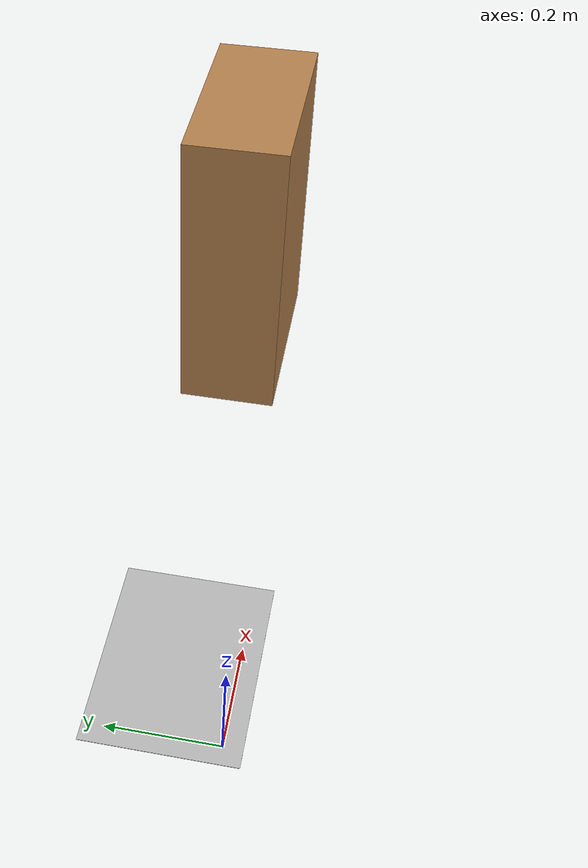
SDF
<sdf version='1.6'>
  <world name='default'>
    <scene>
      <ambient>0.4 0.4 0.4 1</ambient>
      <background>0.7 0.7 0.7 1</background>
      <shadows>0</shadows>
    </scene>

    <physics name='default_physics' default='0' type='ode'>
      <max_step_size>0.001</max_step_size>
      <real_time_factor>1</real_time_factor>
      <real_time_update_rate>1000</real_time_update_rate>
      <gravity>0 0 -9.8</gravity>
      <magnetic_field>6e-06 2.3e-05 -4.2e-05</magnetic_field>
    </physics>

    <light name='sun' type='directional'>
      <cast_shadows>0</cast_shadows>
      <pose frame=''>0 0 10 0 -0 0</pose>
      <diffuse>0.8 0.8 0.8 1</diffuse>
      <specular>0.1 0.1 0.1 1</specular>
      <attenuation>
        <range>1000</range>
        <constant>0.9</constant>
        <linear>0.01</linear>
        <quadratic>0.001</quadratic>
      </attenuation>
      <direction>-0.5 0.5 -1</direction>
    </light>

    <gui fullscreen='0'>
      <camera name='user_camera'>
        <pose frame=''>0 0 0.5 0 1.570796 1.570796</pose>
        <view_controller>orbit</view_controller>
        <projection_type>perspective</projection_type>
      </camera>
    </gui>

    <model name='camera'>
        <link name='camera_link'>
            <pose>0 0 1.0 0 1.570796 1.570796</pose>
            <visual name='visual'>
                <pose>0 0 0 0 0 0</pose>
                <geometry>
                    <box>
                        <size>0.3 0.2 0.1</size>
                    </box>
                </geometry>
                <material>
                    <script>
                        <name>Gazebo/Wood</name>
                        <uri>__default__</uri>
                    </script>
                </material>
            </visual>
            <gravity>0</gravity>
            <sensor name='camera_sensor' type='camera'>
                <camera>
                    <image>
                        <width>1280</width>
                        <height>800</height>
                        <format>R8G8B8</format>
                    </image>
                    <clip>
                        <near>0.19</near>
                        <far>3.2</far>
                    </clip>
                    <noise>
                        <type>gaussian</type>
                        <mean>0</mean>
                        <stddev>0</stddev>
                    </noise>

                    <lens>
                        <intrinsics>
                            <fx>1000</fx>
                            <fy>1000</fy>
                            <cx>640</cx>
                            <cy>400</cy>
                            <s>0.0</s>
                        </intrinsics>
                    </lens>
                </camera>
                <visualize>1</visualize>
                <plugin name='camera_controller' filename='libgazebo_ros_camera.so'>
                    <alwaysOn>true</alwaysOn>
                    <updateRate>30</updateRate>
                    <cameraName>camera_sensor</cameraName>
                    <imageTopicName>image_raw</imageTopicName>
                    <cameraInfoTopicName>camera_info</cameraInfoTopicName>
                    <frameName>camera_link</frameName>
                    <CxPrime>640</CxPrime>
                    <Cx>620</Cx>
                    <Cy>400</Cy>
                    <focalLengthX>1000</focalLengthX>
                    <focalLengthY>1000</focalLengthY>
                    <hackBaseline>0</hackBaseline>
                    <distortionK1>0</distortionK1>
                    <distortionK2>0</distortionK2>
                    <distortionT1>0</distortionT1>
                    <distortionT2>0</distortionT2>
                    <distortionK3>0</distortionK3>
                    <robotNamespace>/</robotNamespace>
                </plugin>
            </sensor>
        </link>
        <static>true</static>
    </model>

    <model name="calibration_pattern">
        <static>true</static>
        <link name="calibration_pattern_link">
            <pose>0.153675 0.10245 0 0 0 0</pose>
            <visual name="visual">
                <cast_shadows>false</cast_shadows>
                <geometry>
                    <box>
                        <size>0.37565 0.2732 0.001</size>
                    </box>
                </geometry>
                <material>
                    <script>
                        <uri>model://calibration_pattern/materials/scripts</uri>
                        <uri>model://calibration_pattern/materials/textures</uri>
                        <name>calibration_pattern</name>
                    </script>
                </material>
            </visual>
        </link>
    </model>
  </world>
</sdf>
